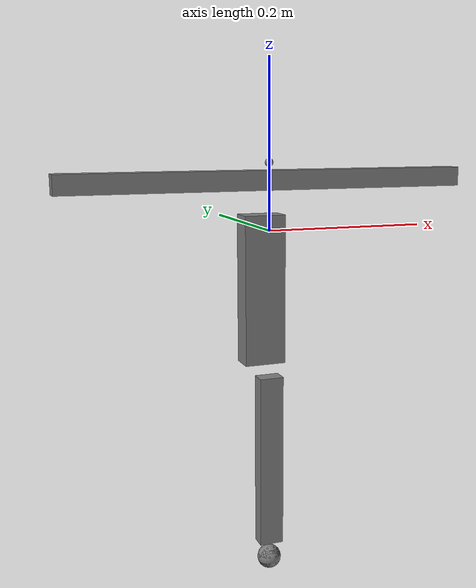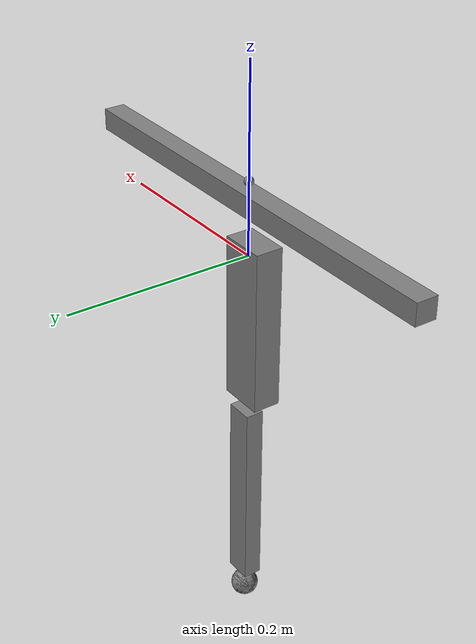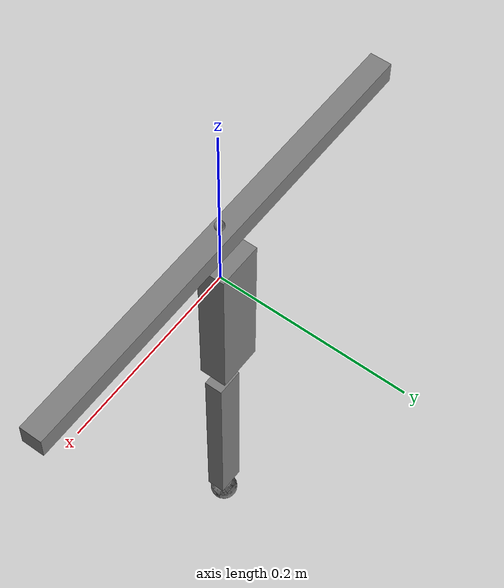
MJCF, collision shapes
<mujoco model="hopper_model">
  <compiler angle="radian" meshdir="meshes" autolimits="true" />
  <option cone="elliptic" impratio="100" />

  <default>
    <default class="hopper">
      <geom friction="1.0" margin="0.001" condim="3"/>
      <joint damping="0.1" armature="0.01" frictionloss="0.2"/>
      <motor ctrlrange="-30 30"/>
      <default class="hip">
        <joint range="-0.6 1.5708"/>
      </default>
      <default class="knee">
        <joint range="-2.6 -1.3"/>
      </default>
      <default class="visual">
        <geom type="mesh" contype="0" conaffinity="0" group="2"/>
      </default>
      <default class="collision">
        <geom group="3"/>
      </default>
    </default>
  </default>

  <keyframe>
    <key name="0" qpos="0 0.4 0 0.9 -1.8" />
  </keyframe>

  <worldbody>
    <body name="Base" pos="0 0 0" quat="1 0 0 0">
      <joint name="x_joint" type="slide" axis="1 0 0" range="-100 100" />
      <joint name="z_joint" type="slide" axis="0 0 1" range="0 5" />
      <joint name="pitch_joint" type="hinge" axis="0 1 0"/>

      <body name="Torso" childclass="hopper">
        <geom class="visual" pos="0 0.013 0" type="mesh" mesh="torso_mesh" material="metal"/>
        <geom class="collision" pos="0 -0.0 0.06" quat="1 0 0 0" type="box" size="0.25 0.0115 0.0115"/>
        <inertial
          pos="0.00012619 -0. 0.039743"
          mass="2."
          diaginertia="0.001 0.04 0.04"
          />

        <site name="imu" pos="0 0 0.08" />

        <body name="Thigh" pos="0 -0. 0">
          <joint name="thigh_joint" class="hip" axis="0 1 0"/>
          <geom class="visual" pos="0 -0.013 0" type="mesh" mesh="thigh_mesh" material="metal"/>
          <geom class="collision" size="0.025 0.015 0.09" pos="-0.01 0. -0.07" type="box" />
          <inertial pos="0.0010373 0.013 -0.029921" mass="0.41602" diaginertia="0.0010413 0.001196 0.00021147"/>

          <body name="Shank" pos="0 0. -0.22">
            <joint name="calf_joint" class="knee" axis="0 1 0"/>
            <geom class="visual" type="mesh" mesh="shank_mesh" material="metal"/>
            <geom class="collision" size="0.015 0.01 0.11" pos="0 0 -0.07" type="box" />
            <inertial pos="-0.000239033 0. -0.0752972" mass="0.116643" diaginertia="0.000594634 0.000591483 5.24161e-06"/>

            <body name="Foot" pos="0 0 -0.20193" quat="0.707105 0 0 -0.707108">
              <geom class="visual" type="mesh" mesh="foot_mesh" material="metal"/>
              <geom class="collision" size="0.015" pos="0 0 0" priority="1" condim="6"
              friction="1.0 0.02 0.01" euler="0 1.5708 0"/>
              <inertial
                pos="5.2042E-18 0 -0.001849"
                mass="0.015263"
                diaginertia="1.9449E-06 1.9397E-06 1.2829E-06"
                />

              <site name="foot_site" pos="0 0 0" size="0.015"/>
            </body>
          </body>
        </body>
      </body>
    </body>
  </worldbody>

  <actuator>
    <motor class="hip" name="thigh" joint="thigh_joint" />
    <motor class="knee" name="calf" joint="calf_joint" />
  </actuator>

  <sensor>
    <jointpos name="thigh_pos" joint="thigh_joint" noise="0.01"/>
    <jointpos name="calf_pos" joint="calf_joint" noise="0.01"/>

    <jointvel name="thigh_vel" joint="thigh_joint" noise="0.01"/>
    <jointvel name="calf_vel" joint="calf_joint" noise="0.01"/>

    <jointactuatorfrc name="thigh_torque" joint="thigh_joint" noise="0.01"/>
    <jointactuatorfrc name="calf_torque" joint="calf_joint" noise="0.01"/>

    <framequat name="imu_quat" objtype="site" objname="imu" noise="0.01"/>
    <gyro name="imu_gyro" site="imu" noise="0.01"/>
    <accelerometer name="imu_acc" site="imu" noise="0.01"/>

    <framepos name="frame_pos" objtype="site" objname="imu" noise="0.01"/>
    <framelinvel name="frame_vel" objtype="site" objname="imu" noise="0.01"/>

    <touch name="foot_force" site="foot_site" noise="0.01"/>
  </sensor>

  <asset>
    <material name="metal" rgba=".9 .95 .95 1" />
    <material name="black" rgba="0 0 0 1" />
    <material name="white" rgba="1 1 1 1" />
    <material name="gray" rgba="0.671705 0.692426 0.774270 1" />

    <mesh file="Torso.STL" name="torso_mesh" />
    <mesh file="Thigh.STL" name="thigh_mesh" />
    <mesh file="Shank.STL" name="shank_mesh" />
    <mesh file="Foot.STL" name="foot_mesh" />
    <mesh file="Coupler.STL" name="coupler_mesh" />
  </asset>

</mujoco>
